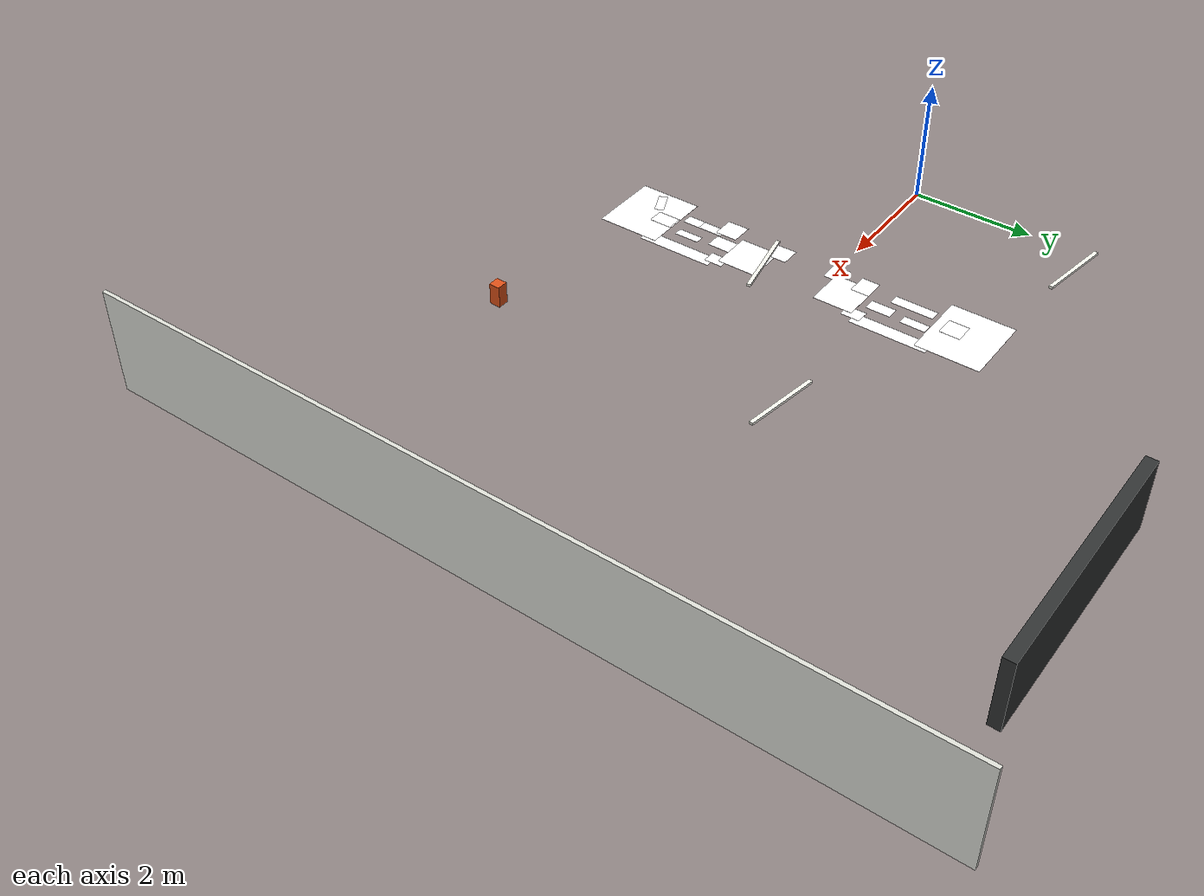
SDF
<sdf version="1.10">
 <world name="kookmin_xycar_track">
  <model name="white_line_cad_07">
   <static>true</static>
   <pose>2.8650000000000002 -2.3149999999999999 0.0152 0 0 0</pose>
   <link name="white_line_cad_07_surface">
    <visual name="visual">
     <cast_shadows>false</cast_shadows>
     <geometry><plane><normal>0 0 1</normal><size>0.19 0.70999999999999996</size></plane></geometry>
     <material>
      <ambient>1 1 1 1</ambient>
      <diffuse>1 1 1 1</diffuse>
      <emissive>0.949000001 0.949000001 0.925499976 1</emissive>
      <pbr>
       <metal>
        <albedo_map>file://media/materials/textures/kookmin_white_line_cad_07.png</albedo_map>
        <roughness>1</roughness>
        <metalness>0</metalness>
       </metal>
      </pbr>
     </material>
    </visual>
    <inertial>
     <mass>1</mass>
     <inertia><ixx>1</ixx><ixy>0</ixy><ixz>0</ixz><iyy>1</iyy><iyz>0</iyz><izz>1</izz></inertia>
    </inertial>
   </link>
  </model>
  <model name="white_line_cad_09">
   <static>true</static>
   <pose>3.0699999999999998 -3.2599999999999998 0.015599999999999999 0 0 0</pose>
   <link name="white_line_cad_09_surface">
    <visual name="visual">
     <cast_shadows>false</cast_shadows>
     <geometry><plane><normal>0 0 1</normal><size>1.22 1.0600000000000001</size></plane></geometry>
     <material>
      <ambient>1 1 1 1</ambient>
      <diffuse>1 1 1 1</diffuse>
      <emissive>0.949000001 0.949000001 0.925499976 1</emissive>
      <pbr>
       <metal>
        <albedo_map>file://media/materials/textures/kookmin_white_line_cad_09.png</albedo_map>
        <roughness>1</roughness>
        <metalness>0</metalness>
       </metal>
      </pbr>
     </material>
    </visual>
    <inertial>
     <mass>1</mass>
     <inertia><ixx>1</ixx><ixy>0</ixy><ixz>0</ixz><iyy>1</iyy><iyz>0</iyz><izz>1</izz></inertia>
    </inertial>
   </link>
  </model>
  <model name="white_line_cad_10">
   <static>true</static>
   <pose>3.6299999999999999 -2.3199999999999998 0.015800000000000002 0 0 0</pose>
   <link name="white_line_cad_10_surface">
    <visual name="visual">
     <cast_shadows>false</cast_shadows>
     <geometry><plane><normal>0 0 1</normal><size>0.23999999999999999 1.28</size></plane></geometry>
     <material>
      <ambient>1 1 1 1</ambient>
      <diffuse>1 1 1 1</diffuse>
      <emissive>0.949000001 0.949000001 0.925499976 1</emissive>
      <pbr>
       <metal>
        <albedo_map>file://media/materials/textures/kookmin_white_line_cad_10.png</albedo_map>
        <roughness>1</roughness>
        <metalness>0</metalness>
       </metal>
      </pbr>
     </material>
    </visual>
    <inertial>
     <mass>1</mass>
     <inertia><ixx>1</ixx><ixy>0</ixy><ixz>0</ixz><iyy>1</iyy><iyz>0</iyz><izz>1</izz></inertia>
    </inertial>
   </link>
  </model>
  <model name="white_line_cad_11">
   <static>true</static>
   <pose>3.5350000000000001 -1.645 0.016 0 0 0</pose>
   <link name="white_line_cad_11_surface">
    <visual name="visual">
     <cast_shadows>false</cast_shadows>
     <geometry><plane><normal>0 0 1</normal><size>0.23000000000000001 0.31</size></plane></geometry>
     <material>
      <ambient>1 1 1 1</ambient>
      <diffuse>1 1 1 1</diffuse>
      <emissive>0.949000001 0.949000001 0.925499976 1</emissive>
      <pbr>
       <metal>
        <albedo_map>file://media/materials/textures/kookmin_white_line_cad_11.png</albedo_map>
        <roughness>1</roughness>
        <metalness>0</metalness>
       </metal>
      </pbr>
     </material>
    </visual>
    <inertial>
     <mass>1</mass>
     <inertia><ixx>1</ixx><ixy>0</ixy><ixz>0</ixz><iyy>1</iyy><iyz>0</iyz><izz>1</izz></inertia>
    </inertial>
   </link>
  </model>
  <model name="white_line_cad_12">
   <static>true</static>
   <pose>2.8149999999999999 1.4450000000000001 0.016199999999999999 0 0 0</pose>
   <link name="white_line_cad_12_surface">
    <visual name="visual">
     <cast_shadows>false</cast_shadows>
     <geometry><plane><normal>0 0 1</normal><size>0.19 0.70999999999999996</size></plane></geometry>
     <material>
      <ambient>1 1 1 1</ambient>
      <diffuse>1 1 1 1</diffuse>
      <emissive>0.949000001 0.949000001 0.925499976 1</emissive>
      <pbr>
       <metal>
        <albedo_map>file://media/materials/textures/kookmin_white_line_cad_12.png</albedo_map>
        <roughness>1</roughness>
        <metalness>0</metalness>
       </metal>
      </pbr>
     </material>
    </visual>
    <inertial>
     <mass>1</mass>
     <inertia><ixx>1</ixx><ixy>0</ixy><ixz>0</ixz><iyy>1</iyy><iyz>0</iyz><izz>1</izz></inertia>
    </inertial>
   </link>
  </model>
  <model name="white_line_cad_14">
   <static>true</static>
   <pose>3.02 2.3999999999999999 0.0166 0 0 0</pose>
   <link name="white_line_cad_14_surface">
    <visual name="visual">
     <cast_shadows>false</cast_shadows>
     <geometry><plane><normal>0 0 1</normal><size>1.22 1.0600000000000001</size></plane></geometry>
     <material>
      <ambient>1 1 1 1</ambient>
      <diffuse>1 1 1 1</diffuse>
      <emissive>0.949000001 0.949000001 0.925499976 1</emissive>
      <pbr>
       <metal>
        <albedo_map>file://media/materials/textures/kookmin_white_line_cad_14.png</albedo_map>
        <roughness>1</roughness>
        <metalness>0</metalness>
       </metal>
      </pbr>
     </material>
    </visual>
    <inertial>
     <mass>1</mass>
     <inertia><ixx>1</ixx><ixy>0</ixy><ixz>0</ixz><iyy>1</iyy><iyz>0</iyz><izz>1</izz></inertia>
    </inertial>
   </link>
  </model>
  <model name="white_line_cad_15">
   <static>true</static>
   <pose>3.5800000000000001 1.45 0.016799999999999999 0 0 0</pose>
   <link name="white_line_cad_15_surface">
    <visual name="visual">
     <cast_shadows>false</cast_shadows>
     <geometry><plane><normal>0 0 1</normal><size>0.23999999999999999 1.28</size></plane></geometry>
     <material>
      <ambient>1 1 1 1</ambient>
      <diffuse>1 1 1 1</diffuse>
      <emissive>0.949000001 0.949000001 0.925499976 1</emissive>
      <pbr>
       <metal>
        <albedo_map>file://media/materials/textures/kookmin_white_line_cad_15.png</albedo_map>
        <roughness>1</roughness>
        <metalness>0</metalness>
       </metal>
      </pbr>
     </material>
    </visual>
    <inertial>
     <mass>1</mass>
     <inertia><ixx>1</ixx><ixy>0</ixy><ixz>0</ixz><iyy>1</iyy><iyz>0</iyz><izz>1</izz></inertia>
    </inertial>
   </link>
  </model>
  <model name="white_line_cad_16">
   <static>true</static>
   <pose>3.4849999999999999 0.78000000000000003 0.017000000000000001 0 0 0</pose>
   <link name="white_line_cad_16_surface">
    <visual name="visual">
     <cast_shadows>false</cast_shadows>
     <geometry><plane><normal>0 0 1</normal><size>0.23000000000000001 0.32000000000000001</size></plane></geometry>
     <material>
      <ambient>1 1 1 1</ambient>
      <diffuse>1 1 1 1</diffuse>
      <emissive>0.949000001 0.949000001 0.925499976 1</emissive>
      <pbr>
       <metal>
        <albedo_map>file://media/materials/textures/kookmin_white_line_cad_16.png</albedo_map>
        <roughness>1</roughness>
        <metalness>0</metalness>
       </metal>
      </pbr>
     </material>
    </visual>
    <inertial>
     <mass>1</mass>
     <inertia><ixx>1</ixx><ixy>0</ixy><ixz>0</ixz><iyy>1</iyy><iyz>0</iyz><izz>1</izz></inertia>
    </inertial>
   </link>
  </model>
  <model name="white_line_cad_22">
   <static>true</static>
   <pose>2.8700000000000001 -2.165 0.018200000000000001 0 0 0</pose>
   <link name="white_line_cad_22_surface">
    <visual name="visual">
     <cast_shadows>false</cast_shadows>
     <geometry><plane><normal>0 0 1</normal><size>0.17999999999999999 0.40999999999999998</size></plane></geometry>
     <material>
      <ambient>1 1 1 1</ambient>
      <diffuse>1 1 1 1</diffuse>
      <emissive>0.949000001 0.949000001 0.925499976 1</emissive>
      <pbr>
       <metal>
        <albedo_map>file://media/materials/textures/kookmin_white_line_cad_22.png</albedo_map>
        <roughness>1</roughness>
        <metalness>0</metalness>
       </metal>
      </pbr>
     </material>
    </visual>
    <inertial>
     <mass>1</mass>
     <inertia><ixx>1</ixx><ixy>0</ixy><ixz>0</ixz><iyy>1</iyy><iyz>0</iyz><izz>1</izz></inertia>
    </inertial>
   </link>
  </model>
  <model name="white_line_cad_24">
   <static>true</static>
   <pose>2.7200000000000002 -1.885 0.018599999999999998 0 0 0</pose>
   <link name="white_line_cad_24_surface">
    <visual name="visual">
     <cast_shadows>false</cast_shadows>
     <geometry><plane><normal>0 0 1</normal><size>0.38 0.37</size></plane></geometry>
     <material>
      <ambient>1 1 1 1</ambient>
      <diffuse>1 1 1 1</diffuse>
      <emissive>0.949000001 0.949000001 0.925499976 1</emissive>
      <pbr>
       <metal>
        <albedo_map>file://media/materials/textures/kookmin_white_line_cad_24.png</albedo_map>
        <roughness>1</roughness>
        <metalness>0</metalness>
       </metal>
      </pbr>
     </material>
    </visual>
    <inertial>
     <mass>1</mass>
     <inertia><ixx>1</ixx><ixy>0</ixy><ixz>0</ixz><iyy>1</iyy><iyz>0</iyz><izz>1</izz></inertia>
    </inertial>
   </link>
  </model>
  <model name="white_line_cad_26">
   <static>true</static>
   <pose>2.7549999999999999 0.065000000000000002 0.019 0 0 0</pose>
   <link name="white_line_cad_26_surface">
    <visual name="visual">
     <cast_shadows>false</cast_shadows>
     <geometry><plane><normal>0 0 1</normal><size>0.33000000000000002 0.28999999999999998</size></plane></geometry>
     <material>
      <ambient>1 1 1 1</ambient>
      <diffuse>1 1 1 1</diffuse>
      <emissive>0.949000001 0.949000001 0.925499976 1</emissive>
      <pbr>
       <metal>
        <albedo_map>file://media/materials/textures/kookmin_white_line_cad_26.png</albedo_map>
        <roughness>1</roughness>
        <metalness>0</metalness>
       </metal>
      </pbr>
     </material>
    </visual>
    <inertial>
     <mass>1</mass>
     <inertia><ixx>1</ixx><ixy>0</ixy><ixz>0</ixz><iyy>1</iyy><iyz>0</iyz><izz>1</izz></inertia>
    </inertial>
   </link>
  </model>
  <model name="white_line_cad_27">
   <static>true</static>
   <pose>3.145 0.41499999999999998 0.019199999999999998 0 0 0</pose>
   <link name="white_line_cad_27_surface">
    <visual name="visual">
     <cast_shadows>false</cast_shadows>
     <geometry><plane><normal>0 0 1</normal><size>0.70999999999999996 0.67000000000000004</size></plane></geometry>
     <material>
      <ambient>1 1 1 1</ambient>
      <diffuse>1 1 1 1</diffuse>
      <emissive>0.949000001 0.949000001 0.925499976 1</emissive>
      <pbr>
       <metal>
        <albedo_map>file://media/materials/textures/kookmin_white_line_cad_27.png</albedo_map>
        <roughness>1</roughness>
        <metalness>0</metalness>
       </metal>
      </pbr>
     </material>
    </visual>
    <inertial>
     <mass>1</mass>
     <inertia><ixx>1</ixx><ixy>0</ixy><ixz>0</ixz><iyy>1</iyy><iyz>0</iyz><izz>1</izz></inertia>
    </inertial>
   </link>
  </model>
  <model name="white_line_cad_29">
   <static>true</static>
   <pose>3.1949999999999998 -1.2749999999999999 0.019599999999999999 0 0 0</pose>
   <link name="white_line_cad_29_surface">
    <visual name="visual">
     <cast_shadows>false</cast_shadows>
     <geometry><plane><normal>0 0 1</normal><size>0.70999999999999996 0.67000000000000004</size></plane></geometry>
     <material>
      <ambient>1 1 1 1</ambient>
      <diffuse>1 1 1 1</diffuse>
      <emissive>0.949000001 0.949000001 0.925499976 1</emissive>
      <pbr>
       <metal>
        <albedo_map>file://media/materials/textures/kookmin_white_line_cad_29.png</albedo_map>
        <roughness>1</roughness>
        <metalness>0</metalness>
       </metal>
      </pbr>
     </material>
    </visual>
    <inertial>
     <mass>1</mass>
     <inertia><ixx>1</ixx><ixy>0</ixy><ixz>0</ixz><iyy>1</iyy><iyz>0</iyz><izz>1</izz></inertia>
    </inertial>
   </link>
  </model>
  <model name="white_line_cad_30">
   <static>true</static>
   <pose>2.7999999999999998 -0.90500000000000003 0.019800000000000002 0 0 0</pose>
   <link name="white_line_cad_30_surface">
    <visual name="visual">
     <cast_shadows>false</cast_shadows>
     <geometry><plane><normal>0 0 1</normal><size>0.34000000000000002 0.33000000000000002</size></plane></geometry>
     <material>
      <ambient>1 1 1 1</ambient>
      <diffuse>1 1 1 1</diffuse>
      <emissive>0.949000001 0.949000001 0.925499976 1</emissive>
      <pbr>
       <metal>
        <albedo_map>file://media/materials/textures/kookmin_white_line_cad_30.png</albedo_map>
        <roughness>1</roughness>
        <metalness>0</metalness>
       </metal>
      </pbr>
     </material>
    </visual>
    <inertial>
     <mass>1</mass>
     <inertia><ixx>1</ixx><ixy>0</ixy><ixz>0</ixz><iyy>1</iyy><iyz>0</iyz><izz>1</izz></inertia>
    </inertial>
   </link>
  </model>
  <model name="yellow_centerline_dash_012">
   <static>true</static>
   <pose>2.9649999999999999 2.1899999999999999 0.0287 0 0 0</pose>
   <link name="yellow_centerline_dash_012_surface">
    <visual name="visual">
     <cast_shadows>false</cast_shadows>
     <geometry><plane><normal>0 0 1</normal><size>0.33000000000000002 0.34000000000000002</size></plane></geometry>
     <material>
      <ambient>1 1 1 1</ambient>
      <diffuse>1 1 1 1</diffuse>
      <emissive>1 0.768599987 0.0471000001 1</emissive>
      <pbr>
       <metal>
        <albedo_map>file://media/materials/textures/kookmin_yellow_centerline_dash_012.png</albedo_map>
        <roughness>1</roughness>
        <metalness>0</metalness>
       </metal>
      </pbr>
     </material>
    </visual>
    <inertial>
     <mass>1</mass>
     <inertia><ixx>1</ixx><ixy>0</ixy><ixz>0</ixz><iyy>1</iyy><iyz>0</iyz><izz>1</izz></inertia>
    </inertial>
   </link>
  </model>
  <model name="yellow_centerline_dash_015">
   <static>true</static>
   <pose>3.1949999999999998 1.6499999999999999 0.0293 0 0 0</pose>
   <link name="yellow_centerline_dash_015_surface">
    <visual name="visual">
     <cast_shadows>false</cast_shadows>
     <geometry><plane><normal>0 0 1</normal><size>0.17000000000000001 0.41999999999999998</size></plane></geometry>
     <material>
      <ambient>1 1 1 1</ambient>
      <diffuse>1 1 1 1</diffuse>
      <emissive>1 0.768599987 0.0471000001 1</emissive>
      <pbr>
       <metal>
        <albedo_map>file://media/materials/textures/kookmin_yellow_centerline_dash_015.png</albedo_map>
        <roughness>1</roughness>
        <metalness>0</metalness>
       </metal>
      </pbr>
     </material>
    </visual>
    <inertial>
     <mass>1</mass>
     <inertia><ixx>1</ixx><ixy>0</ixy><ixz>0</ixz><iyy>1</iyy><iyz>0</iyz><izz>1</izz></inertia>
    </inertial>
   </link>
  </model>
  <model name="yellow_centerline_dash_017">
   <static>true</static>
   <pose>3.1549999999999998 1.0649999999999999 0.029700000000000001 0 0 0</pose>
   <link name="yellow_centerline_dash_017_surface">
    <visual name="visual">
     <cast_shadows>false</cast_shadows>
     <geometry><plane><normal>0 0 1</normal><size>0.20999999999999999 0.40999999999999998</size></plane></geometry>
     <material>
      <ambient>1 1 1 1</ambient>
      <diffuse>1 1 1 1</diffuse>
      <emissive>1 0.768599987 0.0471000001 1</emissive>
      <pbr>
       <metal>
        <albedo_map>file://media/materials/textures/kookmin_yellow_centerline_dash_017.png</albedo_map>
        <roughness>1</roughness>
        <metalness>0</metalness>
       </metal>
      </pbr>
     </material>
    </visual>
    <inertial>
     <mass>1</mass>
     <inertia><ixx>1</ixx><ixy>0</ixy><ixz>0</ixz><iyy>1</iyy><iyz>0</iyz><izz>1</izz></inertia>
    </inertial>
   </link>
  </model>
  <model name="yellow_centerline_dash_018">
   <static>true</static>
   <pose>2.8100000000000001 0.60499999999999998 0.029899999999999999 0 0 0</pose>
   <link name="yellow_centerline_dash_018_surface">
    <visual name="visual">
     <cast_shadows>false</cast_shadows>
     <geometry><plane><normal>0 0 1</normal><size>0.35999999999999999 0.31</size></plane></geometry>
     <material>
      <ambient>1 1 1 1</ambient>
      <diffuse>1 1 1 1</diffuse>
      <emissive>1 0.768599987 0.0471000001 1</emissive>
      <pbr>
       <metal>
        <albedo_map>file://media/materials/textures/kookmin_yellow_centerline_dash_018.png</albedo_map>
        <roughness>1</roughness>
        <metalness>0</metalness>
       </metal>
      </pbr>
     </material>
    </visual>
    <inertial>
     <mass>1</mass>
     <inertia><ixx>1</ixx><ixy>0</ixy><ixz>0</ixz><iyy>1</iyy><iyz>0</iyz><izz>1</izz></inertia>
    </inertial>
   </link>
  </model>
  <model name="yellow_centerline_dash_027">
   <static>true</static>
   <pose>3.1400000000000001 -1.79 0.031699999999999999 0 0 0</pose>
   <link name="yellow_centerline_dash_027_surface">
    <visual name="visual">
     <cast_shadows>false</cast_shadows>
     <geometry><plane><normal>0 0 1</normal><size>0.28000000000000003 0.38</size></plane></geometry>
     <material>
      <ambient>1 1 1 1</ambient>
      <diffuse>1 1 1 1</diffuse>
      <emissive>1 0.768599987 0.0471000001 1</emissive>
      <pbr>
       <metal>
        <albedo_map>file://media/materials/textures/kookmin_yellow_centerline_dash_027.png</albedo_map>
        <roughness>1</roughness>
        <metalness>0</metalness>
       </metal>
      </pbr>
     </material>
    </visual>
    <inertial>
     <mass>1</mass>
     <inertia><ixx>1</ixx><ixy>0</ixy><ixz>0</ixz><iyy>1</iyy><iyz>0</iyz><izz>1</izz></inertia>
    </inertial>
   </link>
  </model>
  <model name="yellow_centerline_dash_029">
   <static>true</static>
   <pose>3.2650000000000001 -2.3599999999999999 0.032099999999999997 0 0 0</pose>
   <link name="yellow_centerline_dash_029_surface">
    <visual name="visual">
     <cast_shadows>false</cast_shadows>
     <geometry><plane><normal>0 0 1</normal><size>0.14999999999999999 0.41999999999999998</size></plane></geometry>
     <material>
      <ambient>1 1 1 1</ambient>
      <diffuse>1 1 1 1</diffuse>
      <emissive>1 0.768599987 0.0471000001 1</emissive>
      <pbr>
       <metal>
        <albedo_map>file://media/materials/textures/kookmin_yellow_centerline_dash_029.png</albedo_map>
        <roughness>1</roughness>
        <metalness>0</metalness>
       </metal>
      </pbr>
     </material>
    </visual>
    <inertial>
     <mass>1</mass>
     <inertia><ixx>1</ixx><ixy>0</ixy><ixz>0</ixz><iyy>1</iyy><iyz>0</iyz><izz>1</izz></inertia>
    </inertial>
   </link>
  </model>
  <model name="yellow_centerline_dash_031">
   <static>true</static>
   <pose>3.1150000000000002 -2.9300000000000002 0.032500000000000001 0 0 0</pose>
   <link name="yellow_centerline_dash_031_surface">
    <visual name="visual">
     <cast_shadows>false</cast_shadows>
     <geometry><plane><normal>0 0 1</normal><size>0.27000000000000002 0.38</size></plane></geometry>
     <material>
      <ambient>1 1 1 1</ambient>
      <diffuse>1 1 1 1</diffuse>
      <emissive>1 0.768599987 0.0471000001 1</emissive>
      <pbr>
       <metal>
        <albedo_map>file://media/materials/textures/kookmin_yellow_centerline_dash_031.png</albedo_map>
        <roughness>1</roughness>
        <metalness>0</metalness>
       </metal>
      </pbr>
     </material>
    </visual>
    <inertial>
     <mass>1</mass>
     <inertia><ixx>1</ixx><ixy>0</ixy><ixz>0</ixz><iyy>1</iyy><iyz>0</iyz><izz>1</izz></inertia>
    </inertial>
   </link>
  </model>
  <model name="yellow_centerline_dash_034">
   <static>true</static>
   <pose>2.7546629905700684 -3.2555220127105713 0.033100001513957977 0 0 0.42480900877644706</pose>
   <link name="yellow_centerline_dash_034_surface">
    <visual name="visual">
     <cast_shadows>false</cast_shadows>
     <geometry><plane><normal>0 0 1</normal><size>0.39000000000000001 0.14999999999999999</size></plane></geometry>
     <material>
      <ambient>1 1 1 1</ambient>
      <diffuse>1 1 1 1</diffuse>
      <emissive>1 0.768599987 0.0471000001 1</emissive>
      <pbr>
       <metal>
        <albedo_map>file://media/materials/textures/kookmin_yellow_centerline_dash_034.png</albedo_map>
        <roughness>1</roughness>
        <metalness>0</metalness>
       </metal>
      </pbr>
     </material>
    </visual>
    <inertial>
     <mass>1</mass>
     <inertia><ixx>1</ixx><ixy>0</ixy><ixz>0</ixz><iyy>1</iyy><iyz>0</iyz><izz>1</izz></inertia>
    </inertial>
   </link>
  </model>
  <model name="room_east_wall">
   <static>true</static>
   <pose>11.1000 0.0000 0.9000 0.000000 0.000000 0.000000</pose>
   <link name="east_wall">
    <visual name="visual">
     <geometry><box><size>0.0600 13.2000 1.7000</size></box></geometry>
     <material><ambient>0.8627 0.8706 0.8392 1</ambient><diffuse>0.8627 0.8706 0.8392 1</diffuse></material>
    </visual>
   </link>
  </model>
  <model name="room_locker_bank">
   <static>true</static>
   <pose>7.4000 5.9500 0.7000 0.000000 0.000000 0.000000</pose>
   <link name="locker_bank">
    <visual name="visual">
     <geometry><box><size>4.0000 0.1800 1.1500</size></box></geometry>
     <material><ambient>0.1882 0.1961 0.1961 1</ambient><diffuse>0.1882 0.1961 0.1961 1</diffuse></material>
    </visual>
   </link>
  </model>
  <model name="room_orange_cone_reference">
   <static>true</static>
   <pose>6.4000 -3.7000 0.1800 0.000000 0.000000 0.000000</pose>
   <link name="orange_cone_reference">
    <visual name="visual">
     <geometry><box><size>0.1800 0.1800 0.3600</size></box></geometry>
     <material><ambient>0.8627 0.3137 0.0941 1</ambient><diffuse>0.8627 0.3137 0.0941 1</diffuse></material>
    </visual>
   </link>
  </model>
  <model name="room_ceiling_light_5">
   <static>true</static>
   <pose>3.5000 3.9000 2.1500 0.000000 0.000000 -0.150000</pose>
   <link name="ceiling_light_5">
    <visual name="visual">
     <geometry><box><size>1.1000 0.0550 0.0350</size></box></geometry>
     <material><ambient>0.9608 0.9608 0.9216 1</ambient><diffuse>0.9608 0.9608 0.9216 1</diffuse></material>
    </visual>
   </link>
  </model>
  <model name="room_ceiling_light_6">
   <static>true</static>
   <pose>5.8000 0.5000 2.1500 0.000000 0.000000 0.200000</pose>
   <link name="ceiling_light_6">
    <visual name="visual">
     <geometry><box><size>1.1000 0.0550 0.0350</size></box></geometry>
     <material><ambient>0.9608 0.9608 0.9216 1</ambient><diffuse>0.9608 0.9608 0.9216 1</diffuse></material>
    </visual>
   </link>
  </model>
  <model name="room_ceiling_light_7">
   <static>true</static>
   <pose>8.1000 2.2000 2.1500 0.000000 0.000000 -0.150000</pose>
   <link name="ceiling_light_7">
    <visual name="visual">
     <geometry><box><size>1.1000 0.0550 0.0350</size></box></geometry>
     <material><ambient>0.9608 0.9608 0.9216 1</ambient><diffuse>0.9608 0.9608 0.9216 1</diffuse></material>
    </visual>
   </link>
  </model>
 </world>
</sdf>
